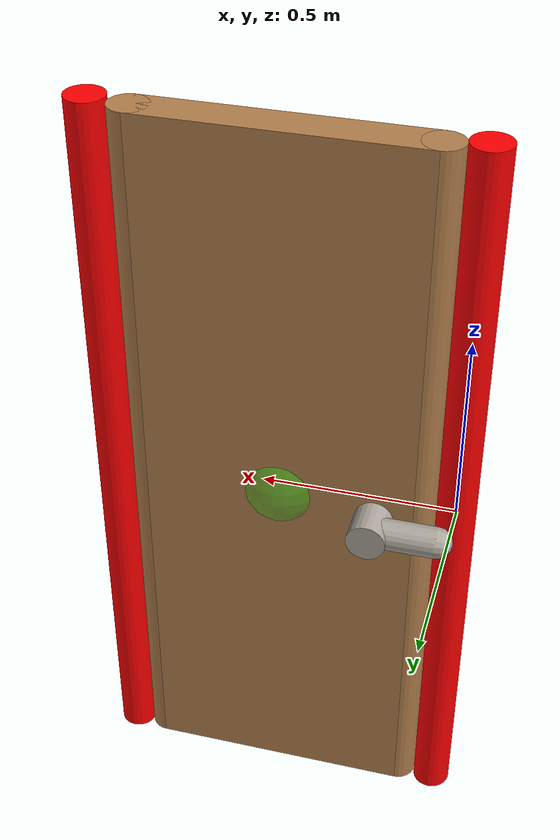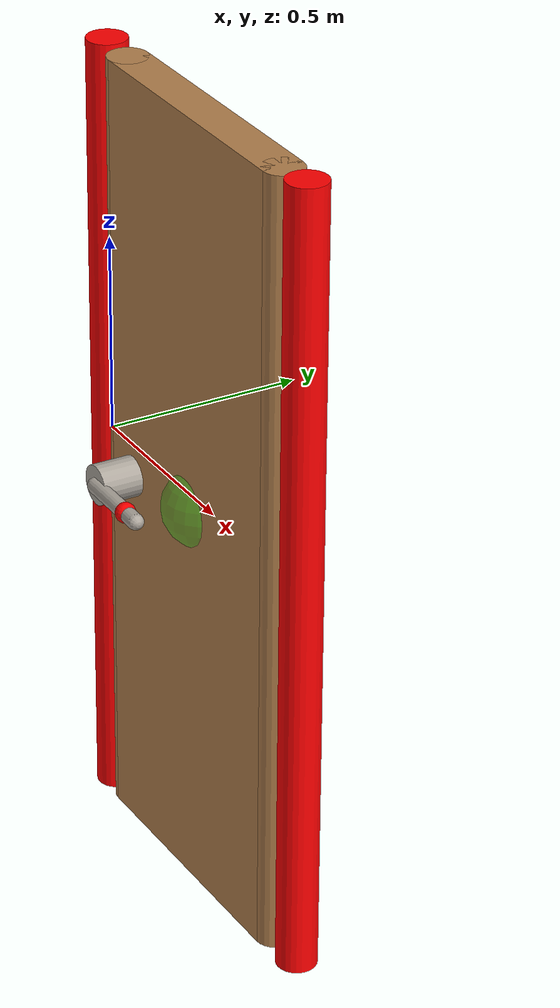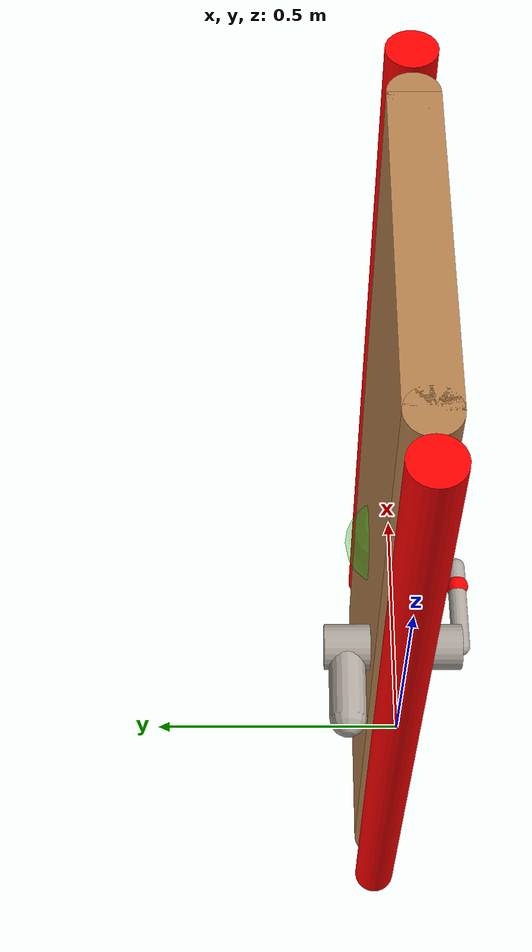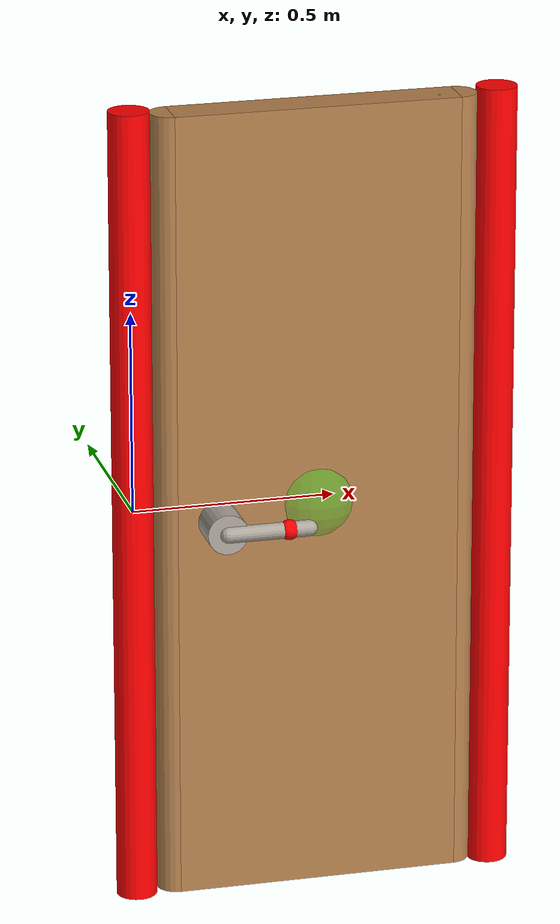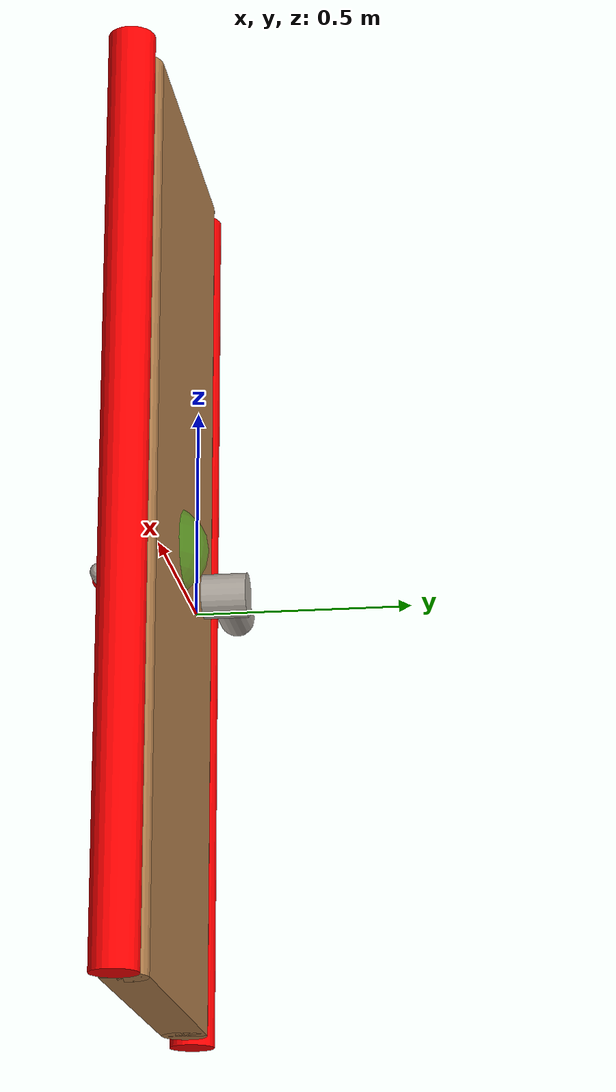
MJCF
<?xml version="1.0" encoding="utf-8"?>
<!-- from https://github.com/vikashplus/mj_envs/tree/master/mj_envs/hand_manipulation_suite/assets -->
<!-- Information about door can be found in this paper: https://arxiv.org/pdf/1709.10087.pdf -->

<mujoco model="door">
  <asset>
    <texture file="../textures/wood.png" type="cube" name="wood" />
    <texture file="../textures/foil.png" type="cube" name="foil" />
    <material name="MatFoil" texture="foil" specular="1" shininess="0.3" rgba="0.9 0.9 0.9 1" />
    <material name="MatWood" texture="wood" texrepeat="3 3" specular="0.4" shininess="0.1" />
  </asset>
  <default>
    <default class="viz">
      <geom contype="0" conaffinity="0" group="1" />
    </default>
    <default class="coll">
      <geom group="0" />
    </default>
    <default class="site">
      <geom group="2" />
    </default>
  </default>
    <worldbody>
      <body>
      <body name="collision">
        <body name="frame" pos="0 0 0" quat="1 0 0 0">
            <inertial pos="0.45 0 0" quat="0.5 0.5 0.5 0.5" mass="7.85398" diaginertia="0.923301 0.764585 0.168533" />
            <geom size="0.05 1." pos="0.9 0 0" type="cylinder" material="MatWood" rgba="1 0 0 1" class="viz" />
            <geom size="0.05 1." pos="0.0 0 0" type="cylinder" material="MatWood" rgba="1 0 0 1" class="viz"/>
            <geom size="0.05 1." pos="0.9 0 0" type="cylinder" rgba="1 0 0 1" class="coll" name="r_frame"/>
            <geom size="0.05 1." pos="0.0 0 0" type="cylinder" rgba="1 0 0 1" class="coll" name="l_frame"/>
            <site name="door_center" pos="0.45 0 0" size="0.025" class="site" rgba="0 0 1 1"/>
            <site name="goal"        pos="0.45 0.0 0.0" size="0.1" class="site" rgba="0 1 0 0.3"/>
            <body name="door" pos="0.45 0 0">
                <inertial pos="0.0296816 -0.00152345 0" quat="0.701072 0 0 0.713091" mass="2.43455" diaginertia="0.0913751 0.0521615 0.043714" />
                <joint name="door_hinge" pos="0.45 0 0" axis="0 0 1" range="0.0 1.57" damping="1" frictionloss="1" limited="true"/>
                <geom size="0.35 0.05 .99" type="box" friction="1 1 1" material="MatWood" class="viz"/>
                <geom size="0.05      .99" pos="0.35 0 0" type="cylinder" material="MatWood" class="viz" />
                <geom size="0.05      .99" pos="-0.35 0 0" type="cylinder" material="MatWood" class="viz" />
                <geom size="0.35 0.05 .99" type="box" friction="1 1 1" class="coll" name="door_box"/>
                <geom size="0.05      .99" pos="0.35 0 0" type="cylinder"  class="coll" name="door_r_cyl"/>
                <geom size="0.05      .99" pos="-0.35 0 0" type="cylinder"  class="coll" name="door_l_cyl" />
                <body name="latch" pos="-0.25 0 -0.025">
                    <inertial pos="-0.017762 0.0138544 0" quat="0.365653 0.605347 -0.36522 0.605365" mass="0.1" diaginertia="0.0483771 0.0410001 0.0111013" />
                    <joint name="latch_joint" pos="0 0 0" axis="0 1 0" range="-0.1 1.57" frictionloss="0.1" damping="0" limited="true"/>
                    <geom size="0.05 0.15" quat="0.707388 0.706825 0 0" type="cylinder" material="MatFoil" class="viz" />
                    <geom size="0.02 0.1" pos="0.1 -0.15 0" quat="0.707388 0 0.706825 0" type="capsule" material="MatFoil" class="viz"/>
                    <geom size="0.04 0.07" pos="-0.1 0.1 0" quat="0.707388 0 0.706825 0" type="capsule" material="MatFoil" class="viz"/>
                    <geom size="0.05 0.15" quat="0.707388 0.706825 0 0" type="cylinder" class="coll" name="handle_base"/>
                    <geom size="0.02 0.1" pos="0.1 -0.15 0" quat="0.707388 0 0.706825 0" type="capsule" class="coll" name="handle"/>
                    <geom size="0.04 0.07" pos="-0.1 0.1 0" quat="0.707388 0 0.706825 0" type="capsule" class="coll" name="latch"/>
                    <site name="door_handle" pos="0.15 -0.15 0" size="0.025" class="site" rgba="1 0 0 1"/>
                </body>
            </body>
        </body>
      </body>
      </body>
    </worldbody>
</mujoco>
